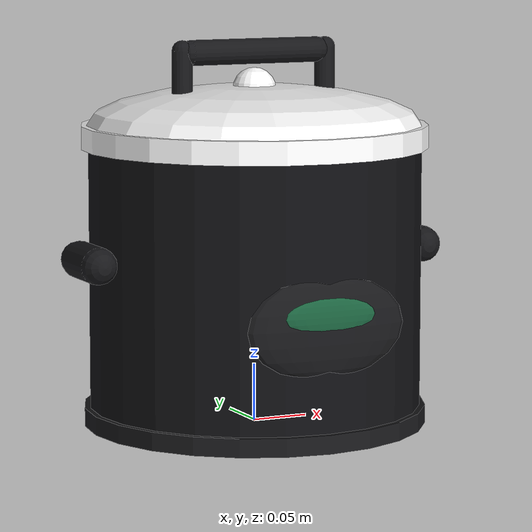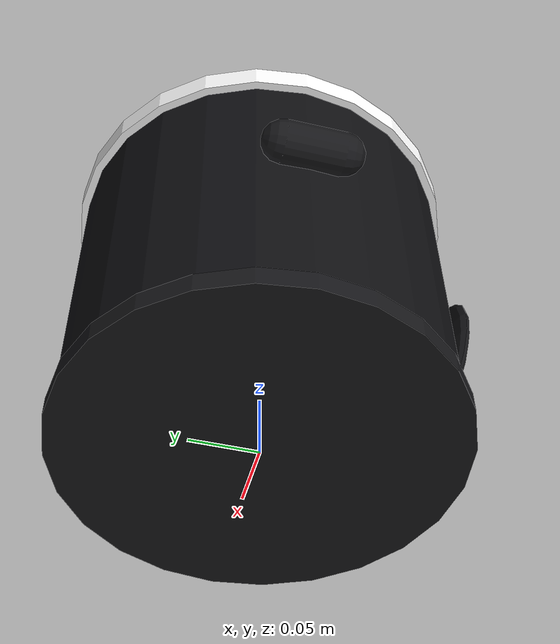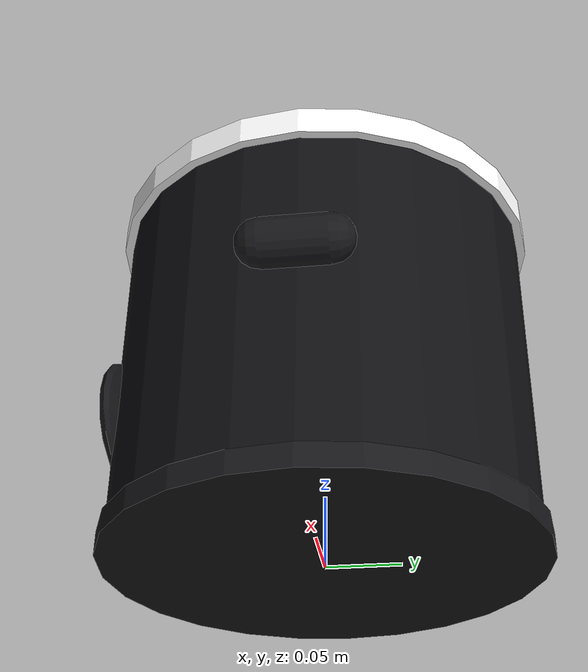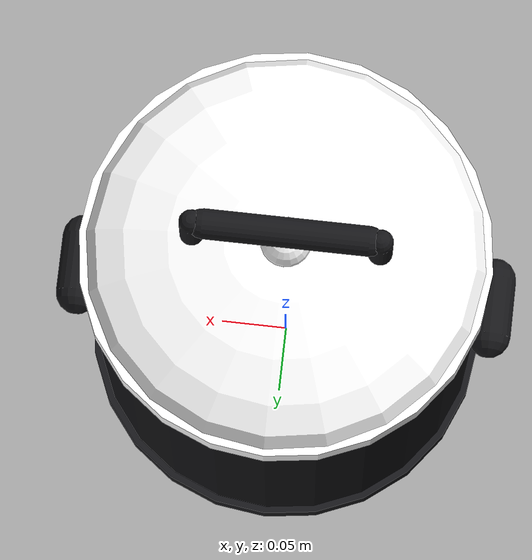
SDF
<?xml version="1.0"?>
<sdf version="1.6">
  <model name="pressure_cooker">
    <static>true</static>
    <link name="link">
      <visual name="base">
        <pose>0 0 0.008 0 0 0</pose>
        <geometry><cylinder><radius>0.15</radius><length>0.016</length></cylinder></geometry>
        <material><pbr><metal><metalness>0.00</metalness><roughness>0.45</roughness></metal></pbr><ambient>0.090 0.090 0.100 1</ambient><diffuse>0.090 0.090 0.100 1</diffuse><specular>0.3 0.3 0.3 1</specular><emissive>0 0 0 1</emissive></material>
      </visual>
      <visual name="body">
        <pose>0 0 0.125 0 0 0</pose>
        <geometry><cylinder><radius>0.145</radius><length>0.235</length></cylinder></geometry>
        <material><pbr><metal><metalness>0.00</metalness><roughness>0.35</roughness></metal></pbr><ambient>0.060 0.060 0.070 1</ambient><diffuse>0.060 0.060 0.070 1</diffuse><specular>0.3 0.3 0.3 1</specular><emissive>0 0 0 1</emissive></material>
      </visual>
      <visual name="lid_rim">
        <pose>0 0 0.252 0 0 0</pose>
        <geometry><cylinder><radius>0.151</radius><length>0.02</length></cylinder></geometry>
        <material><pbr><metal><albedo_map>textures/stainless.png</albedo_map><metalness>0.15</metalness><roughness>0.25</roughness></metal></pbr><ambient>1 1 1 1</ambient><diffuse>1 1 1 1</diffuse><specular>1 1 1 1</specular><emissive>0 0 0 1</emissive></material>
      </visual>
      <visual name="lid_dome">
        <pose>0 0 0.262 0 0 0</pose>
        <geometry><ellipsoid><radii>0.146 0.146 0.034</radii></ellipsoid></geometry>
        <material><pbr><metal><albedo_map>textures/stainless.png</albedo_map><metalness>0.15</metalness><roughness>0.25</roughness></metal></pbr><ambient>1 1 1 1</ambient><diffuse>1 1 1 1</diffuse><specular>1 1 1 1</specular><emissive>0 0 0 1</emissive></material>
      </visual>
      <visual name="handle_post0">
        <pose>-0.068 0 0.308 0 0 0</pose>
        <geometry><capsule><radius>0.009</radius><length>0.038</length></capsule></geometry>
        <material><pbr><metal><metalness>0.00</metalness><roughness>0.45</roughness></metal></pbr><ambient>0.090 0.090 0.100 1</ambient><diffuse>0.090 0.090 0.100 1</diffuse><specular>0.3 0.3 0.3 1</specular><emissive>0 0 0 1</emissive></material>
      </visual>
      <visual name="handle_post1">
        <pose>0.068 0 0.308 0 0 0</pose>
        <geometry><capsule><radius>0.009</radius><length>0.038</length></capsule></geometry>
        <material><pbr><metal><metalness>0.00</metalness><roughness>0.45</roughness></metal></pbr><ambient>0.090 0.090 0.100 1</ambient><diffuse>0.090 0.090 0.100 1</diffuse><specular>0.3 0.3 0.3 1</specular><emissive>0 0 0 1</emissive></material>
      </visual>
      <visual name="handle_bar">
        <pose>0 0 0.325 0 1.570796 0</pose>
        <geometry><capsule><radius>0.011</radius><length>0.12</length></capsule></geometry>
        <material><pbr><metal><metalness>0.00</metalness><roughness>0.45</roughness></metal></pbr><ambient>0.090 0.090 0.100 1</ambient><diffuse>0.090 0.090 0.100 1</diffuse><specular>0.3 0.3 0.3 1</specular><emissive>0 0 0 1</emissive></material>
      </visual>
      <visual name="knob">
        <pose>0 0 0.292 0 0 0</pose>
        <geometry><sphere><radius>0.019</radius></sphere></geometry>
        <material><pbr><metal><albedo_map>textures/stainless.png</albedo_map><metalness>0.25</metalness><roughness>0.15</roughness></metal></pbr><ambient>1 1 1 1</ambient><diffuse>1 1 1 1</diffuse><specular>1 1 1 1</specular><emissive>0 0 0 1</emissive></material>
      </visual>
      <visual name="grip0">
        <pose>-0.155 0 0.15 1.570796 0 0</pose>
        <geometry><capsule><radius>0.016</radius><length>0.044</length></capsule></geometry>
        <material><pbr><metal><metalness>0.00</metalness><roughness>0.45</roughness></metal></pbr><ambient>0.090 0.090 0.100 1</ambient><diffuse>0.090 0.090 0.100 1</diffuse><specular>0.3 0.3 0.3 1</specular><emissive>0 0 0 1</emissive></material>
      </visual>
      <visual name="grip1">
        <pose>0.155 0 0.15 1.570796 0 0</pose>
        <geometry><capsule><radius>0.016</radius><length>0.044</length></capsule></geometry>
        <material><pbr><metal><metalness>0.00</metalness><roughness>0.45</roughness></metal></pbr><ambient>0.090 0.090 0.100 1</ambient><diffuse>0.090 0.090 0.100 1</diffuse><specular>0.3 0.3 0.3 1</specular><emissive>0 0 0 1</emissive></material>
      </visual>
      <visual name="panel">
        <pose>0 -0.139 0.105 0 0 0</pose>
        <geometry><ellipsoid><radii>0.072 0.011 0.044</radii></ellipsoid></geometry>
        <material><pbr><metal><metalness>0.00</metalness><roughness>0.45</roughness></metal></pbr><ambient>0.090 0.090 0.100 1</ambient><diffuse>0.090 0.090 0.100 1</diffuse><specular>0.3 0.3 0.3 1</specular><emissive>0 0 0 1</emissive></material>
      </visual>
      <visual name="display">
        <pose>0 -0.147 0.115 0 0 0</pose>
        <geometry><ellipsoid><radii>0.042 0.004 0.016</radii></ellipsoid></geometry>
        <material><pbr><metal><metalness>0.00</metalness><roughness>0.30</roughness></metal></pbr><ambient>0.100 0.380 0.240 1</ambient><diffuse>0.100 0.380 0.240 1</diffuse><specular>0.3 0.3 0.3 1</specular><emissive>0 0 0 1</emissive></material>
      </visual>
      <collision name="body">
        <pose>0 0 0.15 0 0 0</pose>
        <geometry><cylinder><radius>0.151</radius><length>0.3</length></cylinder></geometry>
      </collision>
      <collision name="grips">
        <pose>0 0 0.15 0 0 0</pose>
        <geometry><box><size>0.342 0.076 0.032</size></box></geometry>
      </collision>
    </link>
    <allow_auto_disable>1</allow_auto_disable>
  </model>
</sdf>
